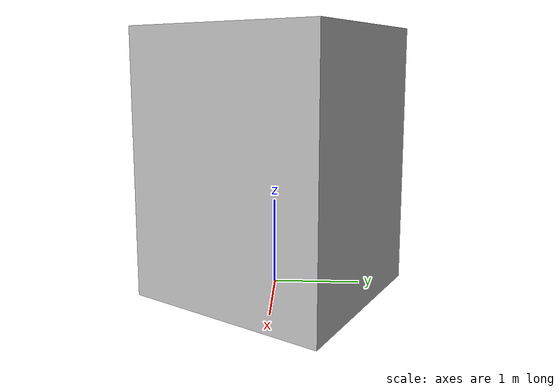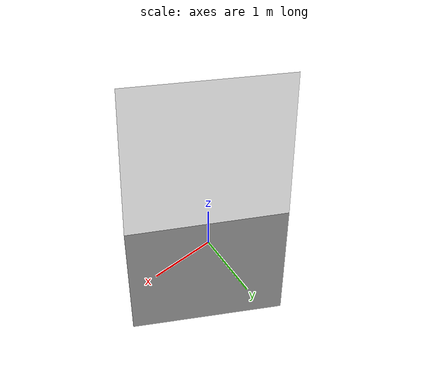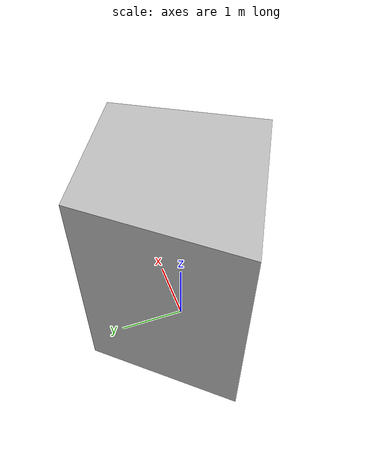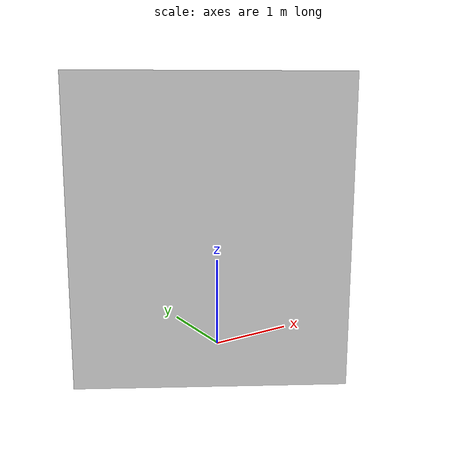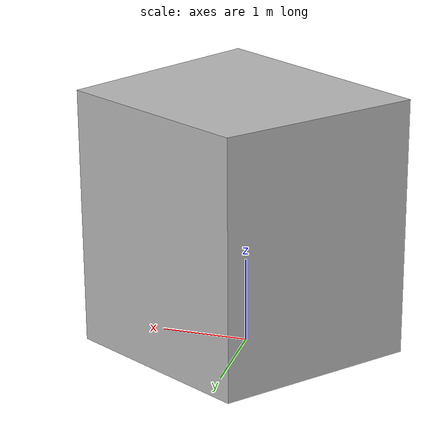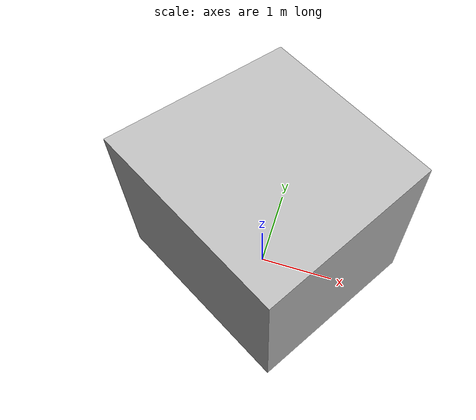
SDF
<?xml version="1.0" ?>
<sdf version="1.7">
  <model name="building_7137_actual_a_ruinas">
    <static>true</static>
    <link name="building_link">
      <visual name="building_visual">
        <geometry>
          <mesh>
            <uri>model://building_7137_actual_a_ruinas/meshes/construction_7137_actual_A_Ruinas_h3m.obj</uri>
          </mesh>
        </geometry>
      </visual>
    <collision name="building_collision">
      <geometry>
        <mesh>
          <uri>model://building_7137_actual_a_ruinas/meshes/construction_7137_actual_A_Ruinas_h3m.obj</uri>
        </mesh>
      </geometry>
    </collision>
    </link>
  </model>
</sdf>
